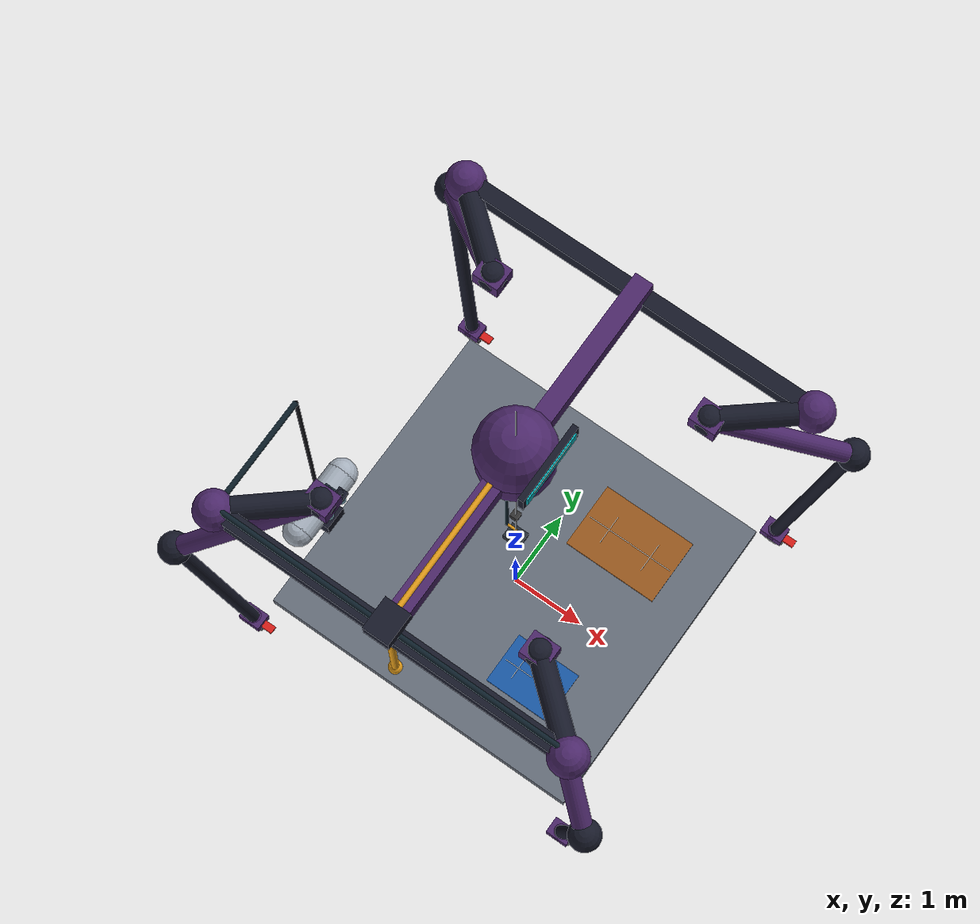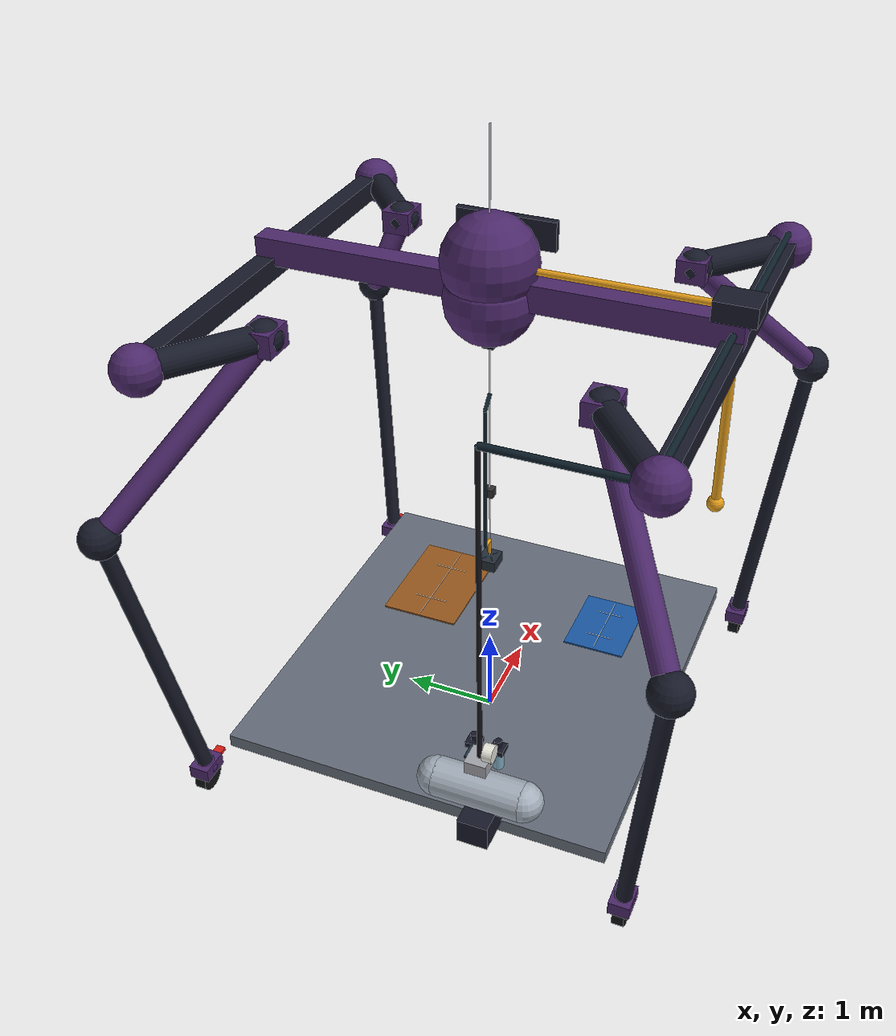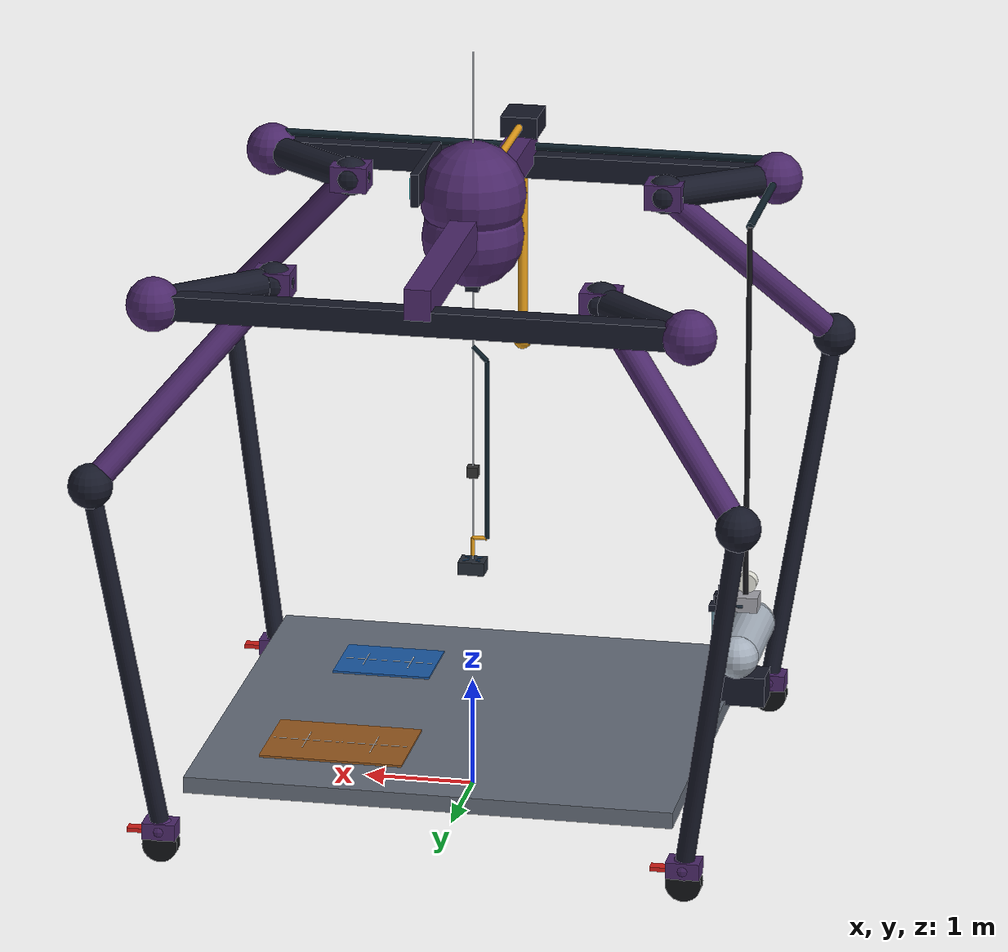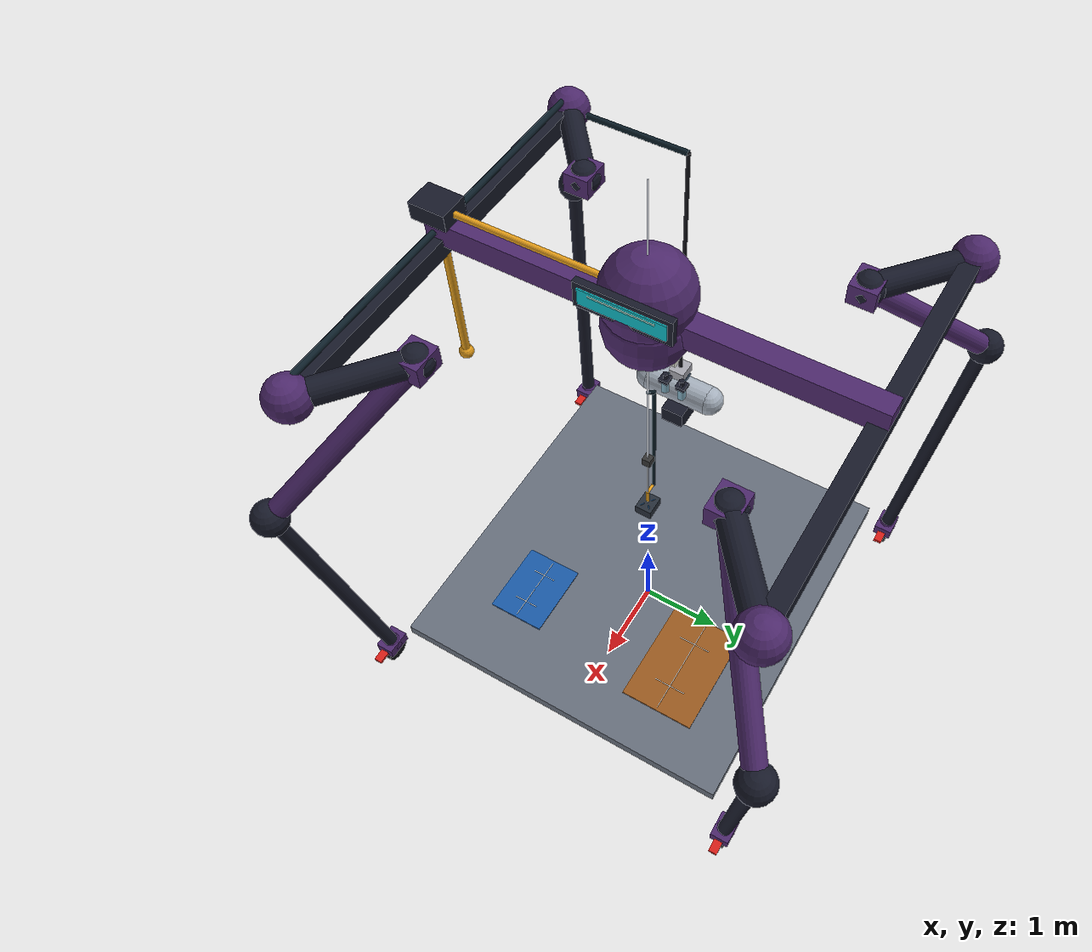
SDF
<sdf version="1.6"><world name="stacking"><gravity>0 0 -9.81</gravity>
    <physics type="ode"><max_step_size>0.001</max_step_size><real_time_update_rate>1000</real_time_update_rate>
    <ode><solver><iters>100</iters></solver></ode></physics>
    <scene><ambient>0.65 0.65 0.65 1</ambient><background>0.16 0.19 0.24 1</background><shadows>false</shadows></scene>
    <light name="sun" type="directional"><pose>0 0 5 0 0 0</pose><diffuse>0.8 0.8 0.8 1</diffuse><direction>-0.3 0.2 -1</direction></light>
    <gui><camera name="overview"><pose>6 -7 6 0 0.5 2.28</pose></camera></gui>
<model name="table"><static>true</static><link name="table"><pose>0 0 0.625 0 0 0</pose><inertial><mass>1</mass><inertia>
    <ixx>1.471875</ixx><iyy>1.6152083333333336</iyy><izz>3.0833333333333335</izz></inertia></inertial>
    <collision name="collision"><geometry><box><size>4.4 4.2 0.15</size></box></geometry><surface><friction><ode><mu>0.8</mu><mu2>0.8</mu2></ode></friction></surface></collision>
    <visual name="visual"><geometry><box><size>4.4 4.2 0.15</size></box></geometry><material><ambient>0.4 0.43 0.48 1</ambient><diffuse>0.4 0.43 0.48 1</diffuse></material></visual></link></model>
<model name="zone_A"><static>true</static><link name="pad"><pose>1 1.05 0.71 0 0 0</pose><inertial><mass>1</mass><inertia>
    <ixx>0.06753333333333333</ixx><iyy>0.14086666666666667</iyy><izz>0.20833333333333334</izz></inertia></inertial>
    <collision name="collision"><geometry><box><size>1.3 0.9 0.02</size></box></geometry><surface><friction><ode><mu>0.8</mu><mu2>0.8</mu2></ode></friction></surface></collision>
    <visual name="visual"><geometry><box><size>1.3 0.9 0.02</size></box></geometry><material><ambient>0.6 0.35 0.12 1</ambient><diffuse>0.6 0.35 0.12 1</diffuse></material></visual></link><link name="reference_marks"><visual name="mark_0_0_0"><pose>0.69 1.05 .7215 0 0 0</pose><geometry><box><size>0.6 0.008 .002</size></box></geometry><material><ambient>0.95 0.95 0.95 1</ambient><diffuse>0.95 0.95 0.95 1</diffuse></material></visual><visual name="mark_0_0_1"><pose>0.69 1.05 .7215 0 0 0</pose><geometry><box><size>0.6 0.008 .002</size></box></geometry><material><ambient>0.95 0.95 0.95 1</ambient><diffuse>0.95 0.95 0.95 1</diffuse></material></visual><visual name="mark_0_0_2"><pose>0.69 1.05 .7215 0 0 0</pose><geometry><box><size>0.008 0.4 .002</size></box></geometry><material><ambient>0.95 0.95 0.95 1</ambient><diffuse>0.95 0.95 0.95 1</diffuse></material></visual><visual name="mark_0_0_3"><pose>0.69 1.05 .7215 0 0 0</pose><geometry><box><size>0.008 0.4 .002</size></box></geometry><material><ambient>0.95 0.95 0.95 1</ambient><diffuse>0.95 0.95 0.95 1</diffuse></material></visual><visual name="mark_0_0_4"><pose>0.69 1.05 .7215 0 0 0</pose><geometry><box><size>0.1 0.008 .002</size></box></geometry><material><ambient>0.95 0.95 0.95 1</ambient><diffuse>0.95 0.95 0.95 1</diffuse></material></visual><visual name="mark_0_0_5"><pose>0.69 1.05 .7215 0 0 0</pose><geometry><box><size>0.008 0.1 .002</size></box></geometry><material><ambient>0.95 0.95 0.95 1</ambient><diffuse>0.95 0.95 0.95 1</diffuse></material></visual><visual name="mark_0_1_0"><pose>1.31 1.05 .7215 0 0 0</pose><geometry><box><size>0.6 0.008 .002</size></box></geometry><material><ambient>0.95 0.95 0.95 1</ambient><diffuse>0.95 0.95 0.95 1</diffuse></material></visual><visual name="mark_0_1_1"><pose>1.31 1.05 .7215 0 0 0</pose><geometry><box><size>0.6 0.008 .002</size></box></geometry><material><ambient>0.95 0.95 0.95 1</ambient><diffuse>0.95 0.95 0.95 1</diffuse></material></visual><visual name="mark_0_1_2"><pose>1.31 1.05 .7215 0 0 0</pose><geometry><box><size>0.008 0.4 .002</size></box></geometry><material><ambient>0.95 0.95 0.95 1</ambient><diffuse>0.95 0.95 0.95 1</diffuse></material></visual><visual name="mark_0_1_3"><pose>1.31 1.05 .7215 0 0 0</pose><geometry><box><size>0.008 0.4 .002</size></box></geometry><material><ambient>0.95 0.95 0.95 1</ambient><diffuse>0.95 0.95 0.95 1</diffuse></material></visual><visual name="mark_0_1_4"><pose>1.31 1.05 .7215 0 0 0</pose><geometry><box><size>0.1 0.008 .002</size></box></geometry><material><ambient>0.95 0.95 0.95 1</ambient><diffuse>0.95 0.95 0.95 1</diffuse></material></visual><visual name="mark_0_1_5"><pose>1.31 1.05 .7215 0 0 0</pose><geometry><box><size>0.008 0.1 .002</size></box></geometry><material><ambient>0.95 0.95 0.95 1</ambient><diffuse>0.95 0.95 0.95 1</diffuse></material></visual></link></model>
<model name="zone_B"><static>true</static><link name="pad"><pose>1 -1.05 0.71 0 0 0</pose><inertial><mass>1</mass><inertia>
    <ixx>0.04086666666666666</ixx><iyy>0.06753333333333333</iyy><izz>0.10833333333333334</izz></inertia></inertial>
    <collision name="collision"><geometry><box><size>0.9 0.7 0.02</size></box></geometry><surface><friction><ode><mu>0.8</mu><mu2>0.8</mu2></ode></friction></surface></collision>
    <visual name="visual"><geometry><box><size>0.9 0.7 0.02</size></box></geometry><material><ambient>0.1 0.35 0.65 1</ambient><diffuse>0.1 0.35 0.65 1</diffuse></material></visual></link><link name="reference_marks"><visual name="mark_0_0_0"><pose>0.79 -1.05 .7215 0 0 0</pose><geometry><box><size>0.4 0.008 .002</size></box></geometry><material><ambient>0.95 0.95 0.95 1</ambient><diffuse>0.95 0.95 0.95 1</diffuse></material></visual><visual name="mark_0_0_1"><pose>0.79 -1.05 .7215 0 0 0</pose><geometry><box><size>0.4 0.008 .002</size></box></geometry><material><ambient>0.95 0.95 0.95 1</ambient><diffuse>0.95 0.95 0.95 1</diffuse></material></visual><visual name="mark_0_0_2"><pose>0.79 -1.05 .7215 0 0 0</pose><geometry><box><size>0.008 0.3 .002</size></box></geometry><material><ambient>0.95 0.95 0.95 1</ambient><diffuse>0.95 0.95 0.95 1</diffuse></material></visual><visual name="mark_0_0_3"><pose>0.79 -1.05 .7215 0 0 0</pose><geometry><box><size>0.008 0.3 .002</size></box></geometry><material><ambient>0.95 0.95 0.95 1</ambient><diffuse>0.95 0.95 0.95 1</diffuse></material></visual><visual name="mark_0_0_4"><pose>0.79 -1.05 .7215 0 0 0</pose><geometry><box><size>0.1 0.008 .002</size></box></geometry><material><ambient>0.95 0.95 0.95 1</ambient><diffuse>0.95 0.95 0.95 1</diffuse></material></visual><visual name="mark_0_0_5"><pose>0.79 -1.05 .7215 0 0 0</pose><geometry><box><size>0.008 0.1 .002</size></box></geometry><material><ambient>0.95 0.95 0.95 1</ambient><diffuse>0.95 0.95 0.95 1</diffuse></material></visual><visual name="mark_0_1_0"><pose>1.21 -1.05 .7215 0 0 0</pose><geometry><box><size>0.4 0.008 .002</size></box></geometry><material><ambient>0.95 0.95 0.95 1</ambient><diffuse>0.95 0.95 0.95 1</diffuse></material></visual><visual name="mark_0_1_1"><pose>1.21 -1.05 .7215 0 0 0</pose><geometry><box><size>0.4 0.008 .002</size></box></geometry><material><ambient>0.95 0.95 0.95 1</ambient><diffuse>0.95 0.95 0.95 1</diffuse></material></visual><visual name="mark_0_1_2"><pose>1.21 -1.05 .7215 0 0 0</pose><geometry><box><size>0.008 0.3 .002</size></box></geometry><material><ambient>0.95 0.95 0.95 1</ambient><diffuse>0.95 0.95 0.95 1</diffuse></material></visual><visual name="mark_0_1_3"><pose>1.21 -1.05 .7215 0 0 0</pose><geometry><box><size>0.008 0.3 .002</size></box></geometry><material><ambient>0.95 0.95 0.95 1</ambient><diffuse>0.95 0.95 0.95 1</diffuse></material></visual><visual name="mark_0_1_4"><pose>1.21 -1.05 .7215 0 0 0</pose><geometry><box><size>0.1 0.008 .002</size></box></geometry><material><ambient>0.95 0.95 0.95 1</ambient><diffuse>0.95 0.95 0.95 1</diffuse></material></visual><visual name="mark_0_1_5"><pose>1.21 -1.05 .7215 0 0 0</pose><geometry><box><size>0.008 0.1 .002</size></box></geometry><material><ambient>0.95 0.95 0.95 1</ambient><diffuse>0.95 0.95 0.95 1</diffuse></material></visual></link></model>
<model name="gantry">
<link name="base"><pose>0 0 3 0 0 0</pose><inertial><mass>1</mass><inertia>
    <ixx>0.001666666666666667</ixx><iyy>0.001666666666666667</iyy><izz>0.001666666666666667</izz></inertia></inertial>
    <collision name="collision"><geometry><box><size>.1 .1 .1</size></box></geometry><surface><friction><ode><mu>0.8</mu><mu2>0.8</mu2></ode></friction></surface></collision>
    <visual name="visual"><geometry><box><size>.1 .1 .1</size></box></geometry><material><ambient>0.2 0.2 0.2 1</ambient><diffuse>0.2 0.2 0.2 1</diffuse></material></visual></link>
<joint name="anchor" type="fixed"><parent>world</parent><child>base</child></joint>
<link name="frame"><visual name="spider_frame_support_-2.35_-2.35"><pose>-1.9 -1.975 5.1899999999999995 0 1.553726400955578 0.6947382761967031</pose><geometry><cylinder><radius>0.14</radius><length>1.1717081547894084</length></cylinder></geometry><material><ambient>0.09 0.10 0.16 1</ambient><diffuse>0.09 0.10 0.16 1</diffuse></material></visual><visual name="frame_collar_-2.35_-2.35"><pose>-2.35 -2.35 5.18 0 0 0</pose><geometry><sphere><radius>.24</radius></sphere></geometry><material><ambient>0.30 0.16 0.42 1</ambient><diffuse>0.30 0.16 0.42 1</diffuse></material></visual><visual name="hip_bracket_-2.35_-2.35"><pose>-1.45 -1.6 5.2 0 0 0</pose><geometry><box><size>.34 .30 .24</size></box></geometry><material><ambient>0.30 0.16 0.42 1</ambient><diffuse>0.30 0.16 0.42 1</diffuse></material></visual><visual name="hip_collar_-2.35_-2.35"><pose>-1.45 -1.6 5.2 0 0 0</pose><geometry><sphere><radius>.18</radius></sphere></geometry><material><ambient>0.09 0.10 0.16 1</ambient><diffuse>0.09 0.10 0.16 1</diffuse></material></visual><visual name="spider_upper_leg_-2.35_-2.35"><pose>-2.15 -2.1500000000000004 4.4 0 2.3028648113869545 -2.4756234162106834</pose><geometry><cylinder><radius>0.12</radius><length>2.393741840717165</length></cylinder></geometry><material><ambient>0.30 0.16 0.42 1</ambient><diffuse>0.30 0.16 0.42 1</diffuse></material></visual><visual name="knee_-2.35_-2.35"><pose>-2.85 -2.7 3.6 0 0 0</pose><geometry><sphere><radius>.20</radius></sphere></geometry><material><ambient>0.09 0.10 0.16 1</ambient><diffuse>0.09 0.10 0.16 1</diffuse></material></visual><visual name="spider_lower_leg_-2.35_-2.35"><pose>-2.6 -2.5250000000000004 1.96 0 2.9576211371550953 0.6107259643892088</pose><geometry><cylinder><radius>0.085</radius><length>3.3363003461918717</length></cylinder></geometry><material><ambient>0.09 0.10 0.16 1</ambient><diffuse>0.09 0.10 0.16 1</diffuse></material></visual><visual name="caster_fork_-2.35_-2.35"><pose>-2.35 -2.35 .30 0 0 0</pose><geometry><box><size>.30 .22 .15</size></box></geometry><material><ambient>0.30 0.16 0.42 1</ambient><diffuse>0.30 0.16 0.42 1</diffuse></material></visual><visual name="wheel_axle_-2.35_-2.35"><pose>-2.35 -2.35 0.22999999999999998 0 3.141592653589793 0.0</pose><geometry><cylinder><radius>0.055</radius><length>0.13999999999999999</length></cylinder></geometry><material><ambient>0.09 0.10 0.16 1</ambient><diffuse>0.09 0.10 0.16 1</diffuse></material></visual><visual name="wheel_collar_-2.35_-2.35"><pose>-2.35 -2.35 .30 0 0 0</pose><geometry><sphere><radius>.12</radius></sphere></geometry><material><ambient>0.30 0.16 0.42 1</ambient><diffuse>0.30 0.16 0.42 1</diffuse></material></visual><visual name="locked_wheel_-2.35_-2.35"><pose>-2.35 -2.35 .16 1.57079632679 0 0</pose><geometry><cylinder><radius>.16</radius><length>.12</length></cylinder></geometry><material><ambient>.06 .07 .08 1</ambient><diffuse>.06 .07 .08 1</diffuse></material></visual><visual name="engaged_wheel_clamp_-2.35_-2.35"><pose>-2.35 -2.35 .29 0 0 0</pose><geometry><box><size>.24 .16 .06</size></box></geometry><material><ambient>0.85 .08 .06 1</ambient><diffuse>0.85 .08 .06 1</diffuse></material></visual><visual name="locked_indicator_-2.35_-2.35"><pose>-2.35 -2.35 .36 0 0 0</pose><geometry><box><size>.08 .08 .04</size></box></geometry><material><ambient>0.1 .9 .2 1</ambient><diffuse>0.1 .9 .2 1</diffuse></material></visual><visual name="brake_-2.35_-2.35"><pose>-2.16 -2.35 .28 0 0 0</pose><geometry><box><size>.22 .10 .04</size></box></geometry><material><ambient>0.85 0.12 0.1 1</ambient><diffuse>0.85 0.12 0.1 1</diffuse></material></visual><visual name="spider_frame_support_-2.35_2.35"><pose>-1.9 1.975 5.1899999999999995 0 1.553726400955578 -0.6947382761967031</pose><geometry><cylinder><radius>0.14</radius><length>1.1717081547894084</length></cylinder></geometry><material><ambient>0.09 0.10 0.16 1</ambient><diffuse>0.09 0.10 0.16 1</diffuse></material></visual><visual name="frame_collar_-2.35_2.35"><pose>-2.35 2.35 5.18 0 0 0</pose><geometry><sphere><radius>.24</radius></sphere></geometry><material><ambient>0.30 0.16 0.42 1</ambient><diffuse>0.30 0.16 0.42 1</diffuse></material></visual><visual name="hip_bracket_-2.35_2.35"><pose>-1.45 1.6 5.2 0 0 0</pose><geometry><box><size>.34 .30 .24</size></box></geometry><material><ambient>0.30 0.16 0.42 1</ambient><diffuse>0.30 0.16 0.42 1</diffuse></material></visual><visual name="hip_collar_-2.35_2.35"><pose>-1.45 1.6 5.2 0 0 0</pose><geometry><sphere><radius>.18</radius></sphere></geometry><material><ambient>0.09 0.10 0.16 1</ambient><diffuse>0.09 0.10 0.16 1</diffuse></material></visual><visual name="spider_upper_leg_-2.35_2.35"><pose>-2.15 2.1500000000000004 4.4 0 2.3028648113869545 2.4756234162106834</pose><geometry><cylinder><radius>0.12</radius><length>2.393741840717165</length></cylinder></geometry><material><ambient>0.30 0.16 0.42 1</ambient><diffuse>0.30 0.16 0.42 1</diffuse></material></visual><visual name="knee_-2.35_2.35"><pose>-2.85 2.7 3.6 0 0 0</pose><geometry><sphere><radius>.20</radius></sphere></geometry><material><ambient>0.09 0.10 0.16 1</ambient><diffuse>0.09 0.10 0.16 1</diffuse></material></visual><visual name="spider_lower_leg_-2.35_2.35"><pose>-2.6 2.5250000000000004 1.96 0 2.9576211371550953 -0.6107259643892088</pose><geometry><cylinder><radius>0.085</radius><length>3.3363003461918717</length></cylinder></geometry><material><ambient>0.09 0.10 0.16 1</ambient><diffuse>0.09 0.10 0.16 1</diffuse></material></visual><visual name="caster_fork_-2.35_2.35"><pose>-2.35 2.35 .30 0 0 0</pose><geometry><box><size>.30 .22 .15</size></box></geometry><material><ambient>0.30 0.16 0.42 1</ambient><diffuse>0.30 0.16 0.42 1</diffuse></material></visual><visual name="wheel_axle_-2.35_2.35"><pose>-2.35 2.35 0.22999999999999998 0 3.141592653589793 0.0</pose><geometry><cylinder><radius>0.055</radius><length>0.13999999999999999</length></cylinder></geometry><material><ambient>0.09 0.10 0.16 1</ambient><diffuse>0.09 0.10 0.16 1</diffuse></material></visual><visual name="wheel_collar_-2.35_2.35"><pose>-2.35 2.35 .30 0 0 0</pose><geometry><sphere><radius>.12</radius></sphere></geometry><material><ambient>0.30 0.16 0.42 1</ambient><diffuse>0.30 0.16 0.42 1</diffuse></material></visual><visual name="locked_wheel_-2.35_2.35"><pose>-2.35 2.35 .16 1.57079632679 0 0</pose><geometry><cylinder><radius>.16</radius><length>.12</length></cylinder></geometry><material><ambient>.06 .07 .08 1</ambient><diffuse>.06 .07 .08 1</diffuse></material></visual><visual name="engaged_wheel_clamp_-2.35_2.35"><pose>-2.35 2.35 .29 0 0 0</pose><geometry><box><size>.24 .16 .06</size></box></geometry><material><ambient>0.85 .08 .06 1</ambient><diffuse>0.85 .08 .06 1</diffuse></material></visual><visual name="locked_indicator_-2.35_2.35"><pose>-2.35 2.35 .36 0 0 0</pose><geometry><box><size>.08 .08 .04</size></box></geometry><material><ambient>0.1 .9 .2 1</ambient><diffuse>0.1 .9 .2 1</diffuse></material></visual><visual name="brake_-2.35_2.35"><pose>-2.16 2.35 .28 0 0 0</pose><geometry><box><size>.22 .10 .04</size></box></geometry><material><ambient>0.85 0.12 0.1 1</ambient><diffuse>0.85 0.12 0.1 1</diffuse></material></visual><visual name="spider_frame_support_2.35_-2.35"><pose>1.9 -1.975 5.1899999999999995 0 1.553726400955578 2.44685437739309</pose><geometry><cylinder><radius>0.14</radius><length>1.1717081547894084</length></cylinder></geometry><material><ambient>0.09 0.10 0.16 1</ambient><diffuse>0.09 0.10 0.16 1</diffuse></material></visual><visual name="frame_collar_2.35_-2.35"><pose>2.35 -2.35 5.18 0 0 0</pose><geometry><sphere><radius>.24</radius></sphere></geometry><material><ambient>0.30 0.16 0.42 1</ambient><diffuse>0.30 0.16 0.42 1</diffuse></material></visual><visual name="hip_bracket_2.35_-2.35"><pose>1.45 -1.6 5.2 0 0 0</pose><geometry><box><size>.34 .30 .24</size></box></geometry><material><ambient>0.30 0.16 0.42 1</ambient><diffuse>0.30 0.16 0.42 1</diffuse></material></visual><visual name="hip_collar_2.35_-2.35"><pose>1.45 -1.6 5.2 0 0 0</pose><geometry><sphere><radius>.18</radius></sphere></geometry><material><ambient>0.09 0.10 0.16 1</ambient><diffuse>0.09 0.10 0.16 1</diffuse></material></visual><visual name="spider_upper_leg_2.35_-2.35"><pose>2.15 -2.1500000000000004 4.4 0 2.3028648113869545 -0.6659692373791098</pose><geometry><cylinder><radius>0.12</radius><length>2.393741840717165</length></cylinder></geometry><material><ambient>0.30 0.16 0.42 1</ambient><diffuse>0.30 0.16 0.42 1</diffuse></material></visual><visual name="knee_2.35_-2.35"><pose>2.85 -2.7 3.6 0 0 0</pose><geometry><sphere><radius>.20</radius></sphere></geometry><material><ambient>0.09 0.10 0.16 1</ambient><diffuse>0.09 0.10 0.16 1</diffuse></material></visual><visual name="spider_lower_leg_2.35_-2.35"><pose>2.6 -2.5250000000000004 1.96 0 2.9576211371550953 2.5308666892005847</pose><geometry><cylinder><radius>0.085</radius><length>3.3363003461918717</length></cylinder></geometry><material><ambient>0.09 0.10 0.16 1</ambient><diffuse>0.09 0.10 0.16 1</diffuse></material></visual><visual name="caster_fork_2.35_-2.35"><pose>2.35 -2.35 .30 0 0 0</pose><geometry><box><size>.30 .22 .15</size></box></geometry><material><ambient>0.30 0.16 0.42 1</ambient><diffuse>0.30 0.16 0.42 1</diffuse></material></visual><visual name="wheel_axle_2.35_-2.35"><pose>2.35 -2.35 0.22999999999999998 0 3.141592653589793 0.0</pose><geometry><cylinder><radius>0.055</radius><length>0.13999999999999999</length></cylinder></geometry><material><ambient>0.09 0.10 0.16 1</ambient><diffuse>0.09 0.10 0.16 1</diffuse></material></visual><visual name="wheel_collar_2.35_-2.35"><pose>2.35 -2.35 .30 0 0 0</pose><geometry><sphere><radius>.12</radius></sphere></geometry><material><ambient>0.30 0.16 0.42 1</ambient><diffuse>0.30 0.16 0.42 1</diffuse></material></visual><visual name="locked_wheel_2.35_-2.35"><pose>2.35 -2.35 .16 1.57079632679 0 0</pose><geometry><cylinder><radius>.16</radius><length>.12</length></cylinder></geometry><material><ambient>.06 .07 .08 1</ambient><diffuse>.06 .07 .08 1</diffuse></material></visual><visual name="engaged_wheel_clamp_2.35_-2.35"><pose>2.35 -2.35 .29 0 0 0</pose><geometry><box><size>.24 .16 .06</size></box></geometry><material><ambient>0.85 .08 .06 1</ambient><diffuse>0.85 .08 .06 1</diffuse></material></visual><visual name="locked_indicator_2.35_-2.35"><pose>2.35 -2.35 .36 0 0 0</pose><geometry><box><size>.08 .08 .04</size></box></geometry><material><ambient>0.1 .9 .2 1</ambient><diffuse>0.1 .9 .2 1</diffuse></material></visual><visual name="brake_2.35_-2.35"><pose>2.54 -2.35 .28 0 0 0</pose><geometry><box><size>.22 .10 .04</size></box></geometry><material><ambient>0.85 0.12 0.1 1</ambient><diffuse>0.85 0.12 0.1 1</diffuse></material></visual><visual name="spider_frame_support_2.35_2.35"><pose>1.9 1.975 5.1899999999999995 0 1.553726400955578 -2.44685437739309</pose><geometry><cylinder><radius>0.14</radius><length>1.1717081547894084</length></cylinder></geometry><material><ambient>0.09 0.10 0.16 1</ambient><diffuse>0.09 0.10 0.16 1</diffuse></material></visual><visual name="frame_collar_2.35_2.35"><pose>2.35 2.35 5.18 0 0 0</pose><geometry><sphere><radius>.24</radius></sphere></geometry><material><ambient>0.30 0.16 0.42 1</ambient><diffuse>0.30 0.16 0.42 1</diffuse></material></visual><visual name="hip_bracket_2.35_2.35"><pose>1.45 1.6 5.2 0 0 0</pose><geometry><box><size>.34 .30 .24</size></box></geometry><material><ambient>0.30 0.16 0.42 1</ambient><diffuse>0.30 0.16 0.42 1</diffuse></material></visual><visual name="hip_collar_2.35_2.35"><pose>1.45 1.6 5.2 0 0 0</pose><geometry><sphere><radius>.18</radius></sphere></geometry><material><ambient>0.09 0.10 0.16 1</ambient><diffuse>0.09 0.10 0.16 1</diffuse></material></visual><visual name="spider_upper_leg_2.35_2.35"><pose>2.15 2.1500000000000004 4.4 0 2.3028648113869545 0.6659692373791098</pose><geometry><cylinder><radius>0.12</radius><length>2.393741840717165</length></cylinder></geometry><material><ambient>0.30 0.16 0.42 1</ambient><diffuse>0.30 0.16 0.42 1</diffuse></material></visual><visual name="knee_2.35_2.35"><pose>2.85 2.7 3.6 0 0 0</pose><geometry><sphere><radius>.20</radius></sphere></geometry><material><ambient>0.09 0.10 0.16 1</ambient><diffuse>0.09 0.10 0.16 1</diffuse></material></visual><visual name="spider_lower_leg_2.35_2.35"><pose>2.6 2.5250000000000004 1.96 0 2.9576211371550953 -2.5308666892005847</pose><geometry><cylinder><radius>0.085</radius><length>3.3363003461918717</length></cylinder></geometry><material><ambient>0.09 0.10 0.16 1</ambient><diffuse>0.09 0.10 0.16 1</diffuse></material></visual><visual name="caster_fork_2.35_2.35"><pose>2.35 2.35 .30 0 0 0</pose><geometry><box><size>.30 .22 .15</size></box></geometry><material><ambient>0.30 0.16 0.42 1</ambient><diffuse>0.30 0.16 0.42 1</diffuse></material></visual><visual name="wheel_axle_2.35_2.35"><pose>2.35 2.35 0.22999999999999998 0 3.141592653589793 0.0</pose><geometry><cylinder><radius>0.055</radius><length>0.13999999999999999</length></cylinder></geometry><material><ambient>0.09 0.10 0.16 1</ambient><diffuse>0.09 0.10 0.16 1</diffuse></material></visual><visual name="wheel_collar_2.35_2.35"><pose>2.35 2.35 .30 0 0 0</pose><geometry><sphere><radius>.12</radius></sphere></geometry><material><ambient>0.30 0.16 0.42 1</ambient><diffuse>0.30 0.16 0.42 1</diffuse></material></visual><visual name="locked_wheel_2.35_2.35"><pose>2.35 2.35 .16 1.57079632679 0 0</pose><geometry><cylinder><radius>.16</radius><length>.12</length></cylinder></geometry><material><ambient>.06 .07 .08 1</ambient><diffuse>.06 .07 .08 1</diffuse></material></visual><visual name="engaged_wheel_clamp_2.35_2.35"><pose>2.35 2.35 .29 0 0 0</pose><geometry><box><size>.24 .16 .06</size></box></geometry><material><ambient>0.85 .08 .06 1</ambient><diffuse>0.85 .08 .06 1</diffuse></material></visual><visual name="locked_indicator_2.35_2.35"><pose>2.35 2.35 .36 0 0 0</pose><geometry><box><size>.08 .08 .04</size></box></geometry><material><ambient>0.1 .9 .2 1</ambient><diffuse>0.1 .9 .2 1</diffuse></material></visual><visual name="brake_2.35_2.35"><pose>2.54 2.35 .28 0 0 0</pose><geometry><box><size>.22 .10 .04</size></box></geometry><material><ambient>0.85 0.12 0.1 1</ambient><diffuse>0.85 0.12 0.1 1</diffuse></material></visual><visual name="vacuum_reservoir"><pose>-2.35 -0.8500000000000001 1.25 0 1.5707963267948966 1.5707963267948966</pose><geometry><cylinder><radius>0.2</radius><length>0.9</length></cylinder></geometry><material><ambient>0.65 0.69 0.74 1</ambient><diffuse>0.65 0.69 0.74 1</diffuse></material></visual><visual name="reservoir_end_-1.3"><pose>-2.35 -1.3 1.25 0 0 0</pose><geometry><sphere><radius>0.2</radius></sphere></geometry><material><ambient>0.65 0.69 0.74 1</ambient><diffuse>0.65 0.69 0.74 1</diffuse></material></visual><visual name="reservoir_end_-0.4"><pose>-2.35 -0.4 1.25 0 0 0</pose><geometry><sphere><radius>0.2</radius></sphere></geometry><material><ambient>0.65 0.69 0.74 1</ambient><diffuse>0.65 0.69 0.74 1</diffuse></material></visual><visual name="vacuum_pump"><pose>-2.35 -.85 .80 0 0 0</pose><geometry><box><size>.42 .32 .28</size></box></geometry><material><ambient>0.09 0.10 0.16 1</ambient><diffuse>0.09 0.10 0.16 1</diffuse></material></visual><visual name="solenoid_manifold"><pose>-2.35 -.85 1.62 0 0 0</pose><geometry><box><size>.25 .22 .14</size></box></geometry><material><ambient>0.65 0.65 0.68 1</ambient><diffuse>0.65 0.65 0.68 1</diffuse></material></visual><visual name="pressure_gauge"><pose>-2.35 -0.95 1.77 0 1.5707963267948966 -1.5707963267948966</pose><geometry><cylinder><radius>0.09</radius><length>0.09999999999999998</length></cylinder></geometry><material><ambient>0.92 0.92 0.88 1</ambient><diffuse>0.92 0.92 0.88 1</diffuse></material></visual><visual name="air_hose"><pose>-2.35 -0.85 3.415 0 0.0 0.0</pose><geometry><cylinder><radius>0.025</radius><length>3.53</length></cylinder></geometry><material><ambient>0.08 0.08 0.10 1</ambient><diffuse>0.08 0.08 0.10 1</diffuse></material></visual><visual name="filter_bowl_0"><pose>-2.12 -0.7 1.48 0 0.0 0.0</pose><geometry><cylinder><radius>0.055</radius><length>0.20000000000000018</length></cylinder></geometry><material><ambient>0.52 0.70 0.78 1</ambient><diffuse>0.52 0.70 0.78 1</diffuse></material></visual><visual name="filter_head_0"><pose>-2.12 -0.7 1.61 0 0 0</pose><geometry><box><size>.14 .14 .06</size></box></geometry><material><ambient>0.09 0.10 0.16 1</ambient><diffuse>0.09 0.10 0.16 1</diffuse></material></visual><visual name="regulator_knob_0"><pose>-2.12 -0.7 1.68 0 0.0 0.0</pose><geometry><cylinder><radius>0.035</radius><length>0.08000000000000007</length></cylinder></geometry><material><ambient>0.09 0.10 0.16 1</ambient><diffuse>0.09 0.10 0.16 1</diffuse></material></visual><visual name="filter_feed_0"><pose>-2.2350000000000003 -0.7 1.62 0 1.5707963267948966 0.0</pose><geometry><cylinder><radius>0.014</radius><length>0.22999999999999998</length></cylinder></geometry><material><ambient>0.12 0.18 0.24 1</ambient><diffuse>0.12 0.18 0.24 1</diffuse></material></visual><visual name="filter_bowl_1"><pose>-2.12 -0.95 1.48 0 0.0 0.0</pose><geometry><cylinder><radius>0.055</radius><length>0.20000000000000018</length></cylinder></geometry><material><ambient>0.52 0.70 0.78 1</ambient><diffuse>0.52 0.70 0.78 1</diffuse></material></visual><visual name="filter_head_1"><pose>-2.12 -0.95 1.61 0 0 0</pose><geometry><box><size>.14 .14 .06</size></box></geometry><material><ambient>0.09 0.10 0.16 1</ambient><diffuse>0.09 0.10 0.16 1</diffuse></material></visual><visual name="regulator_knob_1"><pose>-2.12 -0.95 1.68 0 0.0 0.0</pose><geometry><cylinder><radius>0.035</radius><length>0.08000000000000007</length></cylinder></geometry><material><ambient>0.09 0.10 0.16 1</ambient><diffuse>0.09 0.10 0.16 1</diffuse></material></visual><visual name="filter_feed_1"><pose>-2.2350000000000003 -0.95 1.62 0 1.5707963267948966 0.0</pose><geometry><cylinder><radius>0.014</radius><length>0.22999999999999998</length></cylinder></geometry><material><ambient>0.12 0.18 0.24 1</ambient><diffuse>0.12 0.18 0.24 1</diffuse></material></visual><visual name="overhead_supply"><pose>-2.35 -1.6 5.18 0 1.5707963267948966 -1.5707963267948966</pose><geometry><cylinder><radius>0.035</radius><length>1.5</length></cylinder></geometry><material><ambient>0.05 0.12 0.16 1</ambient><diffuse>0.05 0.12 0.16 1</diffuse></material></visual><visual name="overhead_supply_riser"><pose>-2.35 -2.35 5.265 0 0.0 0.0</pose><geometry><cylinder><radius>0.035</radius><length>0.16999999999999993</length></cylinder></geometry><material><ambient>0.05 0.12 0.16 1</ambient><diffuse>0.05 0.12 0.16 1</diffuse></material></visual><visual name="rail_-2.35"><pose>0 -2.35 5.18 0 0 0</pose><geometry><box><size>4.9 0.2 0.22</size></box></geometry><material><ambient>0.09 0.10 0.16 1</ambient><diffuse>0.09 0.10 0.16 1</diffuse></material></visual><visual name="rail_2.35"><pose>0 2.35 5.18 0 0 0</pose><geometry><box><size>4.9 0.2 0.22</size></box></geometry><material><ambient>0.09 0.10 0.16 1</ambient><diffuse>0.09 0.10 0.16 1</diffuse></material></visual><visual name="gantry_cross_feed"><pose>0.0 -2.35 5.35 0 1.5707963267948966 0.0</pose><geometry><cylinder><radius>0.035</radius><length>4.7</length></cylinder></geometry><material><ambient>0.05 0.12 0.16 1</ambient><diffuse>0.05 0.12 0.16 1</diffuse></material></visual><visual name="gantry_feed_drop"><pose>0.0 -2.35 4.415 0 3.141592653589793 0.0</pose><geometry><cylinder><radius>0.045</radius><length>1.8699999999999997</length></cylinder></geometry><material><ambient>0.90 0.62 0.10 1</ambient><diffuse>0.90 0.62 0.10 1</diffuse></material></visual><visual name="gantry_feed_joint"><pose>0 -2.35 3.48 0 0 0</pose><geometry><sphere><radius>0.085</radius></sphere></geometry><material><ambient>0.90 0.62 0.10 1</ambient><diffuse>0.90 0.62 0.10 1</diffuse></material></visual></link><joint name="frame_mount" type="fixed"><parent>base</parent><child>frame</child></joint>
<link name="slide_x"><pose>0 0 2.1 0 0 0</pose><inertial><mass>1</mass><inertia>
    <ixx>0.0010666666666666667</ixx><iyy>0.0010666666666666667</iyy><izz>0.0010666666666666667</izz></inertia></inertial>

    <gravity>false</gravity><visual name="moving_bridge"><pose>0 0 3.25 0 0 0</pose><geometry><box><size>.24 4.9 .28</size></box></geometry><material><ambient>0.30 0.16 0.42 1</ambient><diffuse>0.30 0.16 0.42 1</diffuse></material></visual><visual name="carriage_manifold"><pose>0 -2.35 3.48 0 0 0</pose><geometry><box><size>.34 .42 .20</size></box></geometry><material><ambient>0.09 0.10 0.16 1</ambient><diffuse>0.09 0.10 0.16 1</diffuse></material></visual><visual name="carriage_hose_fitting"><pose>0 -2.35 3.48 0 0 0</pose><geometry><sphere><radius>0.09</radius></sphere></geometry><material><ambient>0.90 0.62 0.10 1</ambient><diffuse>0.90 0.62 0.10 1</diffuse></material></visual><visual name="carriage_supply_run"><pose>0.0 -1.175 3.48 0 1.5707963267948966 1.5707963267948966</pose><geometry><cylinder><radius>0.035</radius><length>2.35</length></cylinder></geometry><material><ambient>0.90 0.62 0.10 1</ambient><diffuse>0.90 0.62 0.10 1</diffuse></material></visual><visual name="carriage_center_fitting"><pose>0 0 3.48 0 0 0</pose><geometry><sphere><radius>0.075</radius></sphere></geometry><material><ambient>0.90 0.62 0.10 1</ambient><diffuse>0.90 0.62 0.10 1</diffuse></material></visual><visual name="spider_head"><pose>0 0 3.50 0 0 0</pose><geometry><sphere><radius>.48</radius></sphere></geometry><material><ambient>0.30 0.16 0.42 1</ambient><diffuse>0.30 0.16 0.42 1</diffuse></material></visual><visual name="visor_frame"><pose>.425 0 3.66 0 0 0</pose><geometry><box><size>.075 1.02 .30</size></box></geometry><material><ambient>0.09 0.10 0.16 1</ambient><diffuse>0.09 0.10 0.16 1</diffuse></material></visual><visual name="visor_lens"><pose>.469 0 3.66 0 0 0</pose><geometry><box><size>.018 .91 .19</size></box></geometry><material><ambient>0.05 0.72 0.76 1</ambient><diffuse>0.05 0.72 0.76 1</diffuse></material></visual><visual name="visor_glint"><pose>.481 0 3.715 0 0 0</pose><geometry><box><size>.008 .68 .018</size></box></geometry><material><ambient>0.70 0.94 0.90 1</ambient><diffuse>0.70 0.94 0.90 1</diffuse></material></visual></link>
<link name="slide_y"><pose>0 0 2.1 0 0 0</pose><inertial><mass>1</mass><inertia>
    <ixx>0.0010666666666666667</ixx><iyy>0.0010666666666666667</iyy><izz>0.0010666666666666667</izz></inertia></inertial>

    <gravity>false</gravity><visual name="spider_abdomen"><pose>0 0 3.12 0 0 0</pose><geometry><sphere><radius>.46</radius></sphere></geometry><material><ambient>0.30 0.16 0.42 1</ambient><diffuse>0.30 0.16 0.42 1</diffuse></material></visual><visual name="spinneret"><pose>0 0 2.70 0 0 0</pose><geometry><box><size>.12 .12 .18</size></box></geometry><material><ambient>0.09 0.10 0.16 1</ambient><diffuse>0.09 0.10 0.16 1</diffuse></material></visual></link>
<link name="slide_z"><pose>0 0 2.1 0 0 0</pose><inertial><mass>1</mass><inertia>
    <ixx>0.0010666666666666667</ixx><iyy>0.0010666666666666667</iyy><izz>0.0010666666666666667</izz></inertia></inertial>

    <gravity>false</gravity><visual name="spider_silk"><pose>0 0 2.435 0 0 0</pose><geometry><box><size>.012 .012 4.75</size></box></geometry><material><ambient>0.92 0.94 0.98 1</ambient><diffuse>0.92 0.94 0.98 1</diffuse></material></visual></link>
<link name="tool"><pose>0 0 2.1 0 0 0</pose><inertial><mass>1</mass><inertia>
    <ixx>0.004533333333333334</ixx><iyy>0.005999999999999999</iyy><izz>0.008133333333333334</izz></inertia></inertial>
    <collision name="collision"><geometry><box><size>.24 .20 .12</size></box></geometry><surface><friction><ode><mu>0.8</mu><mu2>0.8</mu2></ode></friction></surface></collision>
    <visual name="visual"><geometry><box><size>.24 .20 .12</size></box></geometry><material><ambient>0.15 0.18 0.22 1</ambient><diffuse>0.15 0.18 0.22 1</diffuse></material></visual><gravity>false</gravity><sensor name="vacuum_contact" type="contact"><always_on>true</always_on><update_rate>200</update_rate><contact><collision>collision</collision></contact></sensor><visual name="cup_-0.075_-0.055"><pose>-0.075 -0.055 -.052 0 0 0</pose><geometry><cylinder><radius>.034</radius><length>.016</length></cylinder></geometry><material><ambient>0.05 0.06 0.07 1</ambient><diffuse>0.05 0.06 0.07 1</diffuse></material></visual><visual name="cup_lip_-0.075_-0.055"><pose>-0.075 -0.055 -.062 0 0 0</pose><geometry><cylinder><radius>.038</radius><length>.006</length></cylinder></geometry><material><ambient>0.16 0.18 0.20 1</ambient><diffuse>0.16 0.18 0.20 1</diffuse></material></visual><visual name="cup_-0.075_0.055"><pose>-0.075 0.055 -.052 0 0 0</pose><geometry><cylinder><radius>.034</radius><length>.016</length></cylinder></geometry><material><ambient>0.05 0.06 0.07 1</ambient><diffuse>0.05 0.06 0.07 1</diffuse></material></visual><visual name="cup_lip_-0.075_0.055"><pose>-0.075 0.055 -.062 0 0 0</pose><geometry><cylinder><radius>.038</radius><length>.006</length></cylinder></geometry><material><ambient>0.16 0.18 0.20 1</ambient><diffuse>0.16 0.18 0.20 1</diffuse></material></visual><visual name="cup_0.075_-0.055"><pose>0.075 -0.055 -.052 0 0 0</pose><geometry><cylinder><radius>.034</radius><length>.016</length></cylinder></geometry><material><ambient>0.05 0.06 0.07 1</ambient><diffuse>0.05 0.06 0.07 1</diffuse></material></visual><visual name="cup_lip_0.075_-0.055"><pose>0.075 -0.055 -.062 0 0 0</pose><geometry><cylinder><radius>.038</radius><length>.006</length></cylinder></geometry><material><ambient>0.16 0.18 0.20 1</ambient><diffuse>0.16 0.18 0.20 1</diffuse></material></visual><visual name="cup_0.075_0.055"><pose>0.075 0.055 -.052 0 0 0</pose><geometry><cylinder><radius>.034</radius><length>.016</length></cylinder></geometry><material><ambient>0.05 0.06 0.07 1</ambient><diffuse>0.05 0.06 0.07 1</diffuse></material></visual><visual name="cup_lip_0.075_0.055"><pose>0.075 0.055 -.062 0 0 0</pose><geometry><cylinder><radius>.038</radius><length>.006</length></cylinder></geometry><material><ambient>0.16 0.18 0.20 1</ambient><diffuse>0.16 0.18 0.20 1</diffuse></material></visual><visual name="vacuum_distribution_block"><pose>0 0 -.018 0 0 0</pose><geometry><box><size>.13 .11 .045</size></box></geometry><material><ambient>0.68 0.70 0.73 1</ambient><diffuse>0.68 0.70 0.73 1</diffuse></material></visual><visual name="push_in_fitting_0"><pose>-0.075 -0.055 -.028 0 0 0</pose><geometry><sphere><radius>0.014</radius></sphere></geometry><material><ambient>0.82 0.60 0.18 1</ambient><diffuse>0.82 0.60 0.18 1</diffuse></material></visual><visual name="cup_branch_0"><pose>-0.075 -0.055 -0.036000000000000004 0 3.141592653589793 0.0</pose><geometry><cylinder><radius>0.008</radius><length>0.022</length></cylinder></geometry><material><ambient>0.12 0.14 0.16 1</ambient><diffuse>0.12 0.14 0.16 1</diffuse></material></visual><visual name="branch_supply_0"><pose>-0.054375 -0.039875 0.065 0 1.5707963267948966 -2.50884381858761</pose><geometry><cylinder><radius>0.006</radius><length>0.05115295690378025</length></cylinder></geometry><material><ambient>0.12 0.30 0.48 1</ambient><diffuse>0.12 0.30 0.48 1</diffuse></material></visual><visual name="branch_elbow_0"><pose>-0.075 -0.055 0.02 0 3.141592653589793 0.0</pose><geometry><cylinder><radius>0.006</radius><length>0.09</length></cylinder></geometry><material><ambient>0.12 0.30 0.48 1</ambient><diffuse>0.12 0.30 0.48 1</diffuse></material></visual><visual name="push_in_fitting_1"><pose>-0.075 0.055 -.028 0 0 0</pose><geometry><sphere><radius>0.014</radius></sphere></geometry><material><ambient>0.82 0.60 0.18 1</ambient><diffuse>0.82 0.60 0.18 1</diffuse></material></visual><visual name="cup_branch_1"><pose>-0.075 0.055 -0.036000000000000004 0 3.141592653589793 0.0</pose><geometry><cylinder><radius>0.008</radius><length>0.022</length></cylinder></geometry><material><ambient>0.12 0.14 0.16 1</ambient><diffuse>0.12 0.14 0.16 1</diffuse></material></visual><visual name="branch_supply_1"><pose>-0.054375 0.039875 0.065 0 1.5707963267948966 2.50884381858761</pose><geometry><cylinder><radius>0.006</radius><length>0.05115295690378025</length></cylinder></geometry><material><ambient>0.12 0.30 0.48 1</ambient><diffuse>0.12 0.30 0.48 1</diffuse></material></visual><visual name="branch_elbow_1"><pose>-0.075 0.055 0.02 0 3.141592653589793 0.0</pose><geometry><cylinder><radius>0.006</radius><length>0.09</length></cylinder></geometry><material><ambient>0.12 0.30 0.48 1</ambient><diffuse>0.12 0.30 0.48 1</diffuse></material></visual><visual name="push_in_fitting_2"><pose>0.075 -0.055 -.028 0 0 0</pose><geometry><sphere><radius>0.014</radius></sphere></geometry><material><ambient>0.82 0.60 0.18 1</ambient><diffuse>0.82 0.60 0.18 1</diffuse></material></visual><visual name="cup_branch_2"><pose>0.075 -0.055 -0.036000000000000004 0 3.141592653589793 0.0</pose><geometry><cylinder><radius>0.008</radius><length>0.022</length></cylinder></geometry><material><ambient>0.12 0.14 0.16 1</ambient><diffuse>0.12 0.14 0.16 1</diffuse></material></visual><visual name="branch_supply_2"><pose>0.054375 -0.039875 0.065 0 1.5707963267948966 -0.6327488350021832</pose><geometry><cylinder><radius>0.006</radius><length>0.05115295690378025</length></cylinder></geometry><material><ambient>0.12 0.30 0.48 1</ambient><diffuse>0.12 0.30 0.48 1</diffuse></material></visual><visual name="branch_elbow_2"><pose>0.075 -0.055 0.02 0 3.141592653589793 0.0</pose><geometry><cylinder><radius>0.006</radius><length>0.09</length></cylinder></geometry><material><ambient>0.12 0.30 0.48 1</ambient><diffuse>0.12 0.30 0.48 1</diffuse></material></visual><visual name="push_in_fitting_3"><pose>0.075 0.055 -.028 0 0 0</pose><geometry><sphere><radius>0.014</radius></sphere></geometry><material><ambient>0.82 0.60 0.18 1</ambient><diffuse>0.82 0.60 0.18 1</diffuse></material></visual><visual name="cup_branch_3"><pose>0.075 0.055 -0.036000000000000004 0 3.141592653589793 0.0</pose><geometry><cylinder><radius>0.008</radius><length>0.022</length></cylinder></geometry><material><ambient>0.12 0.14 0.16 1</ambient><diffuse>0.12 0.14 0.16 1</diffuse></material></visual><visual name="branch_supply_3"><pose>0.054375 0.039875 0.065 0 1.5707963267948966 0.6327488350021832</pose><geometry><cylinder><radius>0.006</radius><length>0.05115295690378025</length></cylinder></geometry><material><ambient>0.12 0.30 0.48 1</ambient><diffuse>0.12 0.30 0.48 1</diffuse></material></visual><visual name="branch_elbow_3"><pose>0.075 0.055 0.02 0 3.141592653589793 0.0</pose><geometry><cylinder><radius>0.006</radius><length>0.09</length></cylinder></geometry><material><ambient>0.12 0.30 0.48 1</ambient><diffuse>0.12 0.30 0.48 1</diffuse></material></visual><visual name="tool_supply_stem"><pose>0.0 0.0 0.185 0 0.0 0.0</pose><geometry><cylinder><radius>0.018</radius><length>0.17</length></cylinder></geometry><material><ambient>0.90 0.62 0.10 1</ambient><diffuse>0.90 0.62 0.10 1</diffuse></material></visual><visual name="tool_supply_elbow"><pose>-0.065 0.0 0.27 0 1.5707963267948966 3.141592653589793</pose><geometry><cylinder><radius>0.018</radius><length>0.13</length></cylinder></geometry><material><ambient>0.90 0.62 0.10 1</ambient><diffuse>0.90 0.62 0.10 1</diffuse></material></visual><visual name="tool_umbilical"><pose>-0.13 0.0 1.1099999999999999 0 0.0 0.0</pose><geometry><cylinder><radius>0.022</radius><length>1.68</length></cylinder></geometry><material><ambient>0.05 0.12 0.16 1</ambient><diffuse>0.05 0.12 0.16 1</diffuse></material></visual><visual name="tool_umbilical_top"><pose>-0.065 0.0 2.015 0 0.785398163397448 0.0</pose><geometry><cylinder><radius>0.022</radius><length>0.18384776310850245</length></cylinder></geometry><material><ambient>0.05 0.12 0.16 1</ambient><diffuse>0.05 0.12 0.16 1</diffuse></material></visual><visual name="cup_branch_riser_0"><pose>-0.075 -0.055 -0.0175 0 0.0 0.0</pose><geometry><cylinder><radius>0.012</radius><length>0.015000000000000001</length></cylinder></geometry><material><ambient>0.90 0.62 0.10 1</ambient><diffuse>0.90 0.62 0.10 1</diffuse></material></visual><visual name="cup_branch_feed_0"><pose>-0.0375 -0.0275 -0.01 0 1.5707963267948966 -2.50884381858761</pose><geometry><cylinder><radius>0.01</radius><length>0.09300537618869137</length></cylinder></geometry><material><ambient>0.90 0.62 0.10 1</ambient><diffuse>0.90 0.62 0.10 1</diffuse></material></visual><visual name="cup_branch_riser_1"><pose>-0.075 0.055 -0.0175 0 0.0 0.0</pose><geometry><cylinder><radius>0.012</radius><length>0.015000000000000001</length></cylinder></geometry><material><ambient>0.90 0.62 0.10 1</ambient><diffuse>0.90 0.62 0.10 1</diffuse></material></visual><visual name="cup_branch_feed_1"><pose>-0.0375 0.0275 -0.01 0 1.5707963267948966 2.50884381858761</pose><geometry><cylinder><radius>0.01</radius><length>0.09300537618869137</length></cylinder></geometry><material><ambient>0.90 0.62 0.10 1</ambient><diffuse>0.90 0.62 0.10 1</diffuse></material></visual><visual name="cup_branch_riser_2"><pose>0.075 -0.055 -0.0175 0 0.0 0.0</pose><geometry><cylinder><radius>0.012</radius><length>0.015000000000000001</length></cylinder></geometry><material><ambient>0.90 0.62 0.10 1</ambient><diffuse>0.90 0.62 0.10 1</diffuse></material></visual><visual name="cup_branch_feed_2"><pose>0.0375 -0.0275 -0.01 0 1.5707963267948966 -0.6327488350021832</pose><geometry><cylinder><radius>0.01</radius><length>0.09300537618869137</length></cylinder></geometry><material><ambient>0.90 0.62 0.10 1</ambient><diffuse>0.90 0.62 0.10 1</diffuse></material></visual><visual name="cup_branch_riser_3"><pose>0.075 0.055 -0.0175 0 0.0 0.0</pose><geometry><cylinder><radius>0.012</radius><length>0.015000000000000001</length></cylinder></geometry><material><ambient>0.90 0.62 0.10 1</ambient><diffuse>0.90 0.62 0.10 1</diffuse></material></visual><visual name="cup_branch_feed_3"><pose>0.0375 0.0275 -0.01 0 1.5707963267948966 0.6327488350021832</pose><geometry><cylinder><radius>0.01</radius><length>0.09300537618869137</length></cylinder></geometry><material><ambient>0.90 0.62 0.10 1</ambient><diffuse>0.90 0.62 0.10 1</diffuse></material></visual></link>
<joint name="axis_x" type="prismatic"><parent>base</parent><child>slide_x</child><axis><xyz>1 0 0</xyz><limit><lower>-2</lower><upper>2</upper><effort>3000</effort><velocity>1</velocity></limit><dynamics><damping>5</damping></dynamics></axis></joint>
<joint name="axis_y" type="prismatic"><parent>slide_x</parent><child>slide_y</child><axis><xyz>0 1 0</xyz><limit><lower>-2</lower><upper>2</upper><effort>3000</effort><velocity>1</velocity></limit><dynamics><damping>5</damping></dynamics></axis></joint>
<joint name="axis_z" type="prismatic"><parent>slide_y</parent><child>slide_z</child><axis><xyz>0 0 1</xyz><limit><lower>-1.5</lower><upper>0.7</upper><effort>3000</effort><velocity>1</velocity></limit><dynamics><damping>5</damping></dynamics></axis></joint>
<joint name="axis_yaw" type="revolute"><parent>slide_z</parent><child>tool</child><axis><xyz>0 0 1</xyz><limit><lower>-6.3</lower><upper>6.3</upper><effort>3000</effort><velocity>1</velocity></limit><dynamics><damping>5</damping></dynamics></axis></joint>
<plugin name="gantry_control" filename="libsukethon_gantry.so"/></model>
<model name="camera"><static>true</static><pose>0 0 4.8 0 1.57079632679 0</pose><link name="camera_link">
    <sensor name="overhead" type="depth"><always_on>true</always_on><update_rate>10</update_rate><camera><horizontal_fov>1.2</horizontal_fov><image><width>960</width><height>960</height><format>R8G8B8</format></image><clip><near>0.1</near><far>8</far></clip></camera>
    <plugin name="rgbd" filename="libgazebo_ros_openni_kinect.so"><cameraName>overhead</cameraName><imageTopicName>rgb/image_raw</imageTopicName><depthImageTopicName>depth/image_raw</depthImageTopicName><cameraInfoTopicName>rgb/camera_info</cameraInfoTopicName><frameName>overhead_optical</frameName><pointCloudCutoff>0.1</pointCloudCutoff><pointCloudCutoffMax>8</pointCloudCutoffMax></plugin>
    </sensor></link></model>
    <model name="main_view_camera"><static>true</static><pose>17 -6 9 0 0.3162864788267089 2.8023000391357487</pose><link name="main_view_link">
    <sensor name="main_view" type="camera"><always_on>true</always_on><update_rate>15</update_rate><camera><horizontal_fov>1.05</horizontal_fov><image><width>1536</width><height>960</height><format>R8G8B8</format></image><clip><near>0.1</near><far>30</far></clip></camera>
    <plugin name="main_view_ros" filename="libgazebo_ros_camera.so"><cameraName>main_view</cameraName><imageTopicName>image_raw</imageTopicName><cameraInfoTopicName>camera_info</cameraInfoTopicName><frameName>main_view_optical</frameName></plugin>
    </sensor></link></model></world></sdf>
